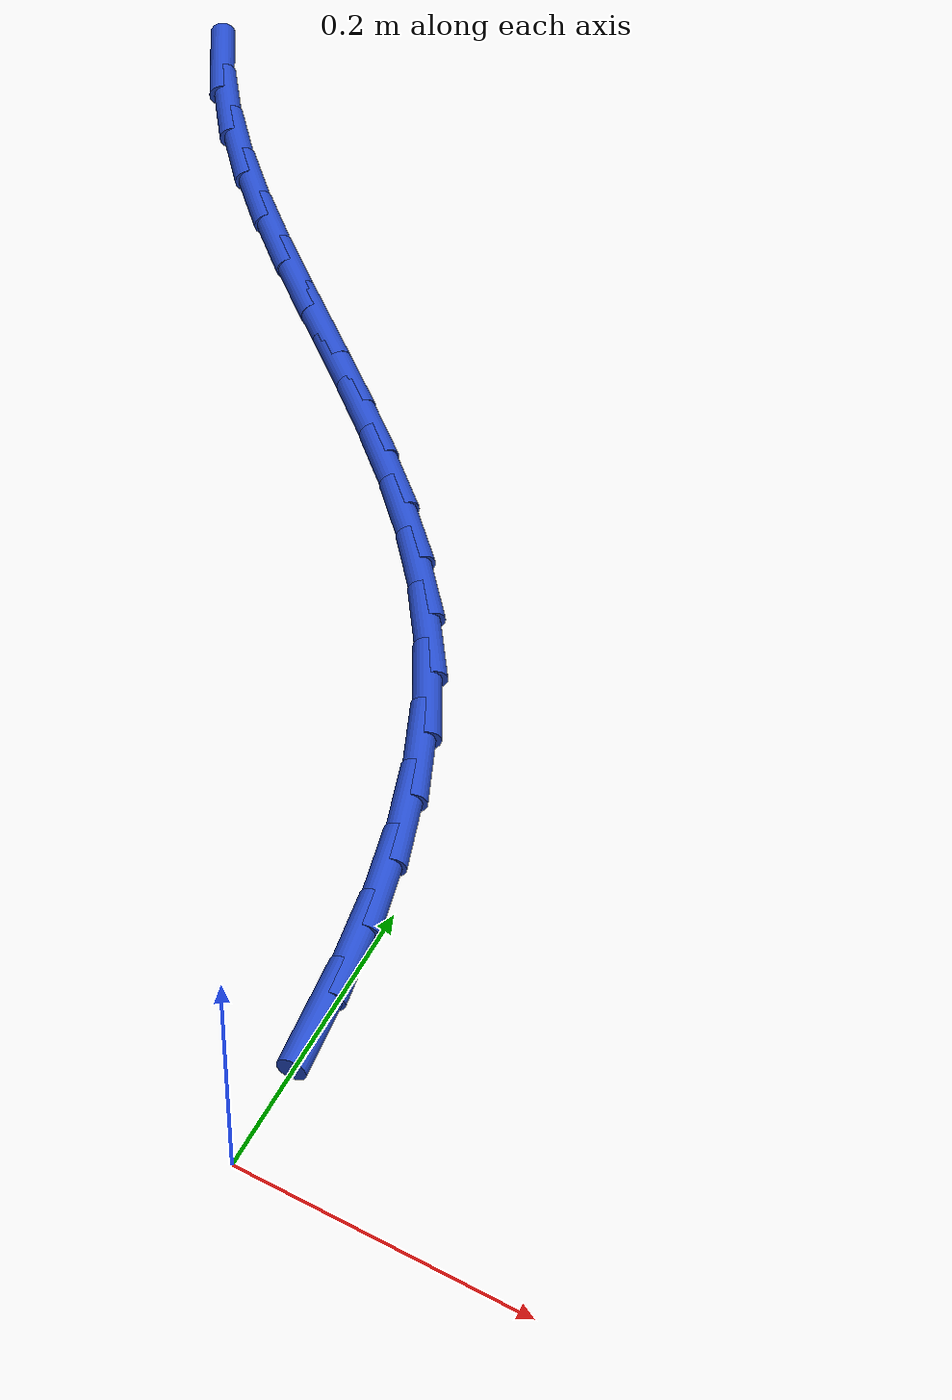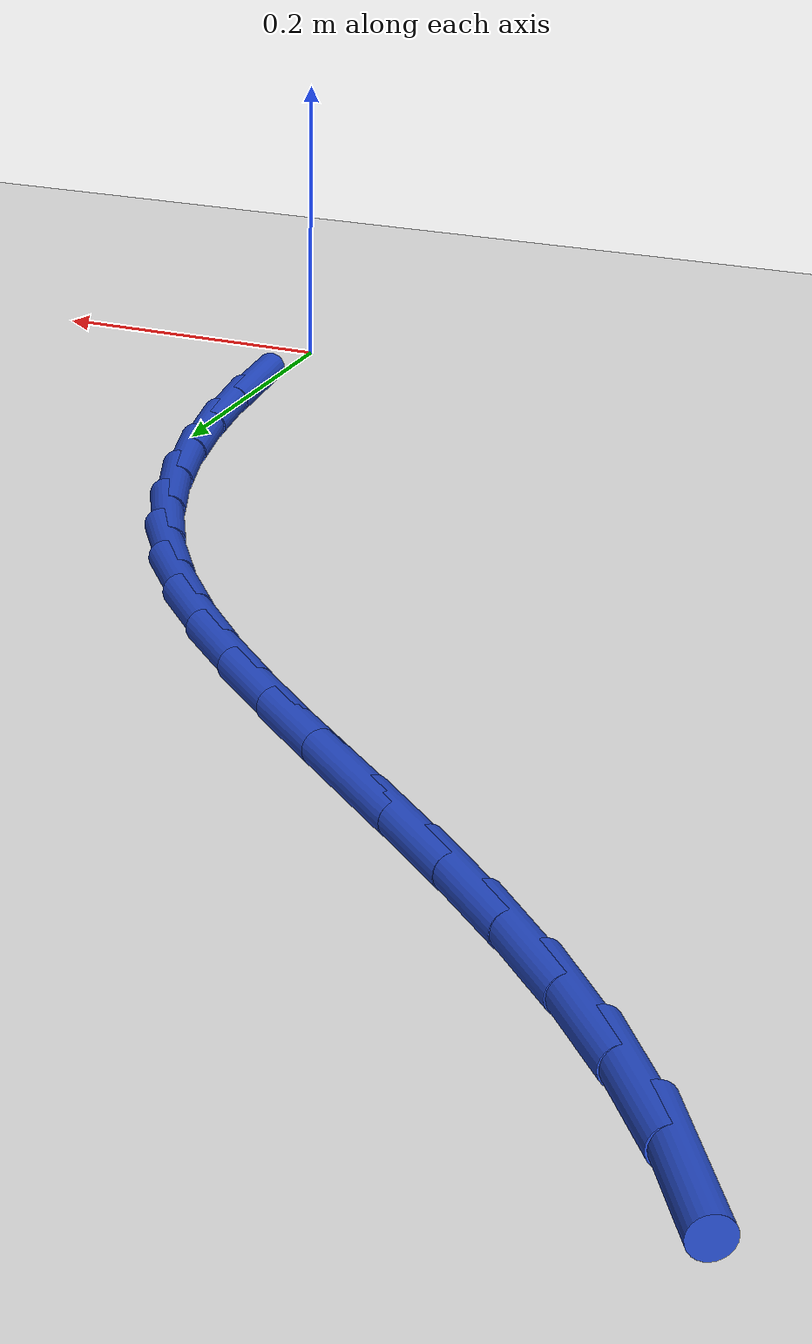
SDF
<sdf version="1.6">
 <world name="default">
  <model name="ground_plane">
   <static>1</static>
   <link name="link">
    <collision name="collision">
     <geometry><plane><normal>0 0 1</normal><size>100 100</size></plane></geometry>
     <surface><friction><ode><mu>100</mu><mu2>50</mu2></ode></friction></surface>
    </collision>
    <visual name="visual">
     <cast_shadows>0</cast_shadows>
     <geometry><plane><normal>0 0 1</normal><size>100 100</size></plane></geometry>
     <material>
      <script><uri>file://media/materials/scripts/gazebo.material</uri><name>Gazebo/WhiteGlow</name></script>
     </material>
    </visual>
   </link>
  </model>
  <model name="line">
   <link name="link_2">
    <pose>-0.002452437122463699 0.10720921753562955 0.01 0 1.57 -1.4734195790212294</pose>
    <collision name="collision">
     <geometry><cylinder><radius>0.01</radius><length>0.08</length></cylinder></geometry>
    </collision>
    <visual name="visual">
     <material>
      <script><name>Gazebo/Blue</name><uri>file://media/materials/scripts/gazebo.material</uri></script>
     </material>
     <geometry><cylinder><radius>0.01</radius><length>0.08</length></cylinder></geometry>
    </visual>
   </link>
   <link name="link_3">
    <pose>-0.007645587806940951 0.16037104722370726 0.01 0 1.57 -1.4145689094842695</pose>
    <collision name="collision">
     <geometry><cylinder><radius>0.01</radius><length>0.08</length></cylinder></geometry>
    </collision>
    <visual name="visual">
     <material>
      <script><name>Gazebo/Blue</name><uri>file://media/materials/scripts/gazebo.material</uri></script>
     </material>
     <geometry><cylinder><radius>0.01</radius><length>0.08</length></cylinder></geometry>
    </visual>
   </link>
   <link name="link_4">
    <pose>-0.01588355189915844 0.21267194024203526 0.01 0 1.57 -1.3475348852987874</pose>
    <collision name="collision">
     <geometry><cylinder><radius>0.01</radius><length>0.08</length></cylinder></geometry>
    </collision>
    <visual name="visual">
     <material>
      <script><name>Gazebo/Blue</name><uri>file://media/materials/scripts/gazebo.material</uri></script>
     </material>
     <geometry><cylinder><radius>0.01</radius><length>0.08</length></cylinder></geometry>
    </visual>
   </link>
   <link name="link_5">
    <pose>-0.027466473393298618 0.2636875836281699 0.01 0 1.57 -1.2712431375198436</pose>
    <collision name="collision">
     <geometry><cylinder><radius>0.01</radius><length>0.08</length></cylinder></geometry>
    </collision>
    <visual name="visual">
     <material>
      <script><name>Gazebo/Blue</name><uri>file://media/materials/scripts/gazebo.material</uri></script>
     </material>
     <geometry><cylinder><radius>0.01</radius><length>0.08</length></cylinder></geometry>
    </visual>
   </link>
   <link name="link_6">
    <pose>-0.04269449628354397 0.31299366441966764 0.01 0 1.57 -1.184739718715511</pose>
    <collision name="collision">
     <geometry><cylinder><radius>0.01</radius><length>0.08</length></cylinder></geometry>
    </collision>
    <visual name="visual">
     <material>
      <script><name>Gazebo/Blue</name><uri>file://media/materials/scripts/gazebo.material</uri></script>
     </material>
     <geometry><cylinder><radius>0.01</radius><length>0.08</length></cylinder></geometry>
    </visual>
   </link>
   <link name="link_7">
    <pose>-0.061867764564076985 0.3601658696540845 0.01 0 1.57 -1.087414361031131</pose>
    <collision name="collision">
     <geometry><cylinder><radius>0.01</radius><length>0.08</length></cylinder></geometry>
    </collision>
    <visual name="visual">
     <material>
      <script><name>Gazebo/Blue</name><uri>file://media/materials/scripts/gazebo.material</uri></script>
     </material>
     <geometry><cylinder><radius>0.01</radius><length>0.08</length></cylinder></geometry>
    </visual>
   </link>
   <link name="link_8">
    <pose>-0.0852864222290801 0.4047798863689768 0.01 0 1.57 -0.9832801934481397</pose>
    <collision name="collision">
     <geometry><cylinder><radius>0.01</radius><length>0.08</length></cylinder></geometry>
    </collision>
    <visual name="visual">
     <material>
      <script><name>Gazebo/Blue</name><uri>file://media/materials/scripts/gazebo.material</uri></script>
     </material>
     <geometry><cylinder><radius>0.01</radius><length>0.08</length></cylinder></geometry>
    </visual>
   </link>
   <link name="link_9">
    <pose>-0.11310188970390438 0.4465470967355545 0.01 0 1.57 -0.8917381367777042</pose>
    <collision name="collision">
     <geometry><cylinder><radius>0.01</radius><length>0.08</length></cylinder></geometry>
    </collision>
    <visual name="visual">
     <material>
      <script><name>Gazebo/Blue</name><uri>file://media/materials/scripts/gazebo.material</uri></script>
     </material>
     <geometry><cylinder><radius>0.01</radius><length>0.08</length></cylinder></geometry>
    </visual>
   </link>
   <link name="link_10">
    <pose>-0.14478383539780804 0.48580091231599154 0.01 0 1.57 -0.8190879116231532</pose>
    <collision name="collision">
     <geometry><cylinder><radius>0.01</radius><length>0.08</length></cylinder></geometry>
    </collision>
    <visual name="visual">
     <material>
      <script><name>Gazebo/Blue</name><uri>file://media/materials/scripts/gazebo.material</uri></script>
     </material>
     <geometry><cylinder><radius>0.01</radius><length>0.08</length></cylinder></geometry>
    </visual>
   </link>
   <link name="link_11">
    <pose>-0.1796066955611529 0.5230528741653403 0.01 0 1.57 -0.7651744274622446</pose>
    <collision name="collision">
     <geometry><cylinder><radius>0.01</radius><length>0.08</length></cylinder></geometry>
    </collision>
    <visual name="visual">
     <material>
      <script><name>Gazebo/Blue</name><uri>file://media/materials/scripts/gazebo.material</uri></script>
     </material>
     <geometry><cylinder><radius>0.01</radius><length>0.08</length></cylinder></geometry>
    </visual>
   </link>
   <link name="link_12">
    <pose>-0.2168448904751476 0.558814537908881 0.01 0 1.57 -0.7292237114786965</pose>
    <collision name="collision">
     <geometry><cylinder><radius>0.01</radius><length>0.08</length></cylinder></geometry>
    </collision>
    <visual name="visual">
     <material>
      <script><name>Gazebo/Blue</name><uri>file://media/materials/scripts/gazebo.material</uri></script>
     </material>
     <geometry><cylinder><radius>0.01</radius><length>0.08</length></cylinder></geometry>
    </visual>
   </link>
   <link name="link_13">
    <pose>-0.2557728404210007 0.5935974591718944 0.01 0 1.57 -0.7103935757408499</pose>
    <collision name="collision">
     <geometry><cylinder><radius>0.01</radius><length>0.08</length></cylinder></geometry>
    </collision>
    <visual name="visual">
     <material>
      <script><name>Gazebo/Blue</name><uri>file://media/materials/scripts/gazebo.material</uri></script>
     </material>
     <geometry><cylinder><radius>0.01</radius><length>0.08</length></cylinder></geometry>
    </visual>
   </link>
   <link name="link_14">
    <pose>-0.29566496567992073 0.6279131935796609 0.01 0 1.57 -0.7080850772625676</pose>
    <collision name="collision">
     <geometry><cylinder><radius>0.01</radius><length>0.08</length></cylinder></geometry>
    </collision>
    <visual name="visual">
     <material>
      <script><name>Gazebo/Blue</name><uri>file://media/materials/scripts/gazebo.material</uri></script>
     </material>
     <geometry><cylinder><radius>0.01</radius><length>0.08</length></cylinder></geometry>
    </visual>
   </link>
   <link name="link_15">
    <pose>-0.33579568653311626 0.6622732967574612 0.01 0 1.57 -0.7220746223140687</pose>
    <collision name="collision">
     <geometry><cylinder><radius>0.01</radius><length>0.08</length></cylinder></geometry>
    </collision>
    <visual name="visual">
     <material>
      <script><name>Gazebo/Blue</name><uri>file://media/materials/scripts/gazebo.material</uri></script>
     </material>
     <geometry><cylinder><radius>0.01</radius><length>0.08</length></cylinder></geometry>
    </visual>
   </link>
   <link name="link_16">
    <pose>-0.3754394232617959 0.6971893243305755 0.01 0 1.57 -0.752517780932649</pose>
    <collision name="collision">
     <geometry><cylinder><radius>0.01</radius><length>0.08</length></cylinder></geometry>
    </collision>
    <visual name="visual">
     <material>
      <script><name>Gazebo/Blue</name><uri>file://media/materials/scripts/gazebo.material</uri></script>
     </material>
     <geometry><cylinder><radius>0.01</radius><length>0.08</length></cylinder></geometry>
    </visual>
   </link>
   <link name="link_17">
    <pose>-0.41387059614716837 0.7331728319242845 0.01 0 1.57 -0.7998392045167213</pose>
    <collision name="collision">
     <geometry><cylinder><radius>0.01</radius><length>0.08</length></cylinder></geometry>
    </collision>
    <visual name="visual">
     <material>
      <script><name>Gazebo/Blue</name><uri>file://media/materials/scripts/gazebo.material</uri></script>
     </material>
     <geometry><cylinder><radius>0.01</radius><length>0.08</length></cylinder></geometry>
    </visual>
   </link>
   <link name="link_18">
    <pose>-0.450363625470442 0.7707353751638686 0.01 0 1.57 -0.8644875407225124</pose>
    <collision name="collision">
     <geometry><cylinder><radius>0.01</radius><length>0.08</length></cylinder></geometry>
    </collision>
    <visual name="visual">
     <material>
      <script><name>Gazebo/Blue</name><uri>file://media/materials/scripts/gazebo.material</uri></script>
     </material>
     <geometry><cylinder><radius>0.01</radius><length>0.08</length></cylinder></geometry>
    </visual>
   </link>
   <link name="link_19">
    <pose>-0.4841929315128255 0.8103885096746084 0.01 0 1.57 -0.9465208209089788</pose>
    <collision name="collision">
     <geometry><cylinder><radius>0.01</radius><length>0.08</length></cylinder></geometry>
    </collision>
    <visual name="visual">
     <material>
      <script><name>Gazebo/Blue</name><uri>file://media/materials/scripts/gazebo.material</uri></script>
     </material>
     <geometry><cylinder><radius>0.01</radius><length>0.08</length></cylinder></geometry>
    </visual>
   </link>
   <link name="link_20">
    <pose>-0.5146329345555274 0.8526437910817841 0.01 0 1.57 -1.044610553574459</pose>
    <collision name="collision">
     <geometry><cylinder><radius>0.01</radius><length>0.08</length></cylinder></geometry>
    </collision>
    <visual name="visual">
     <material>
      <script><name>Gazebo/Blue</name><uri>file://media/materials/scripts/gazebo.material</uri></script>
     </material>
     <geometry><cylinder><radius>0.01</radius><length>0.08</length></cylinder></geometry>
    </visual>
   </link>
  </model>
 </world>
</sdf>
